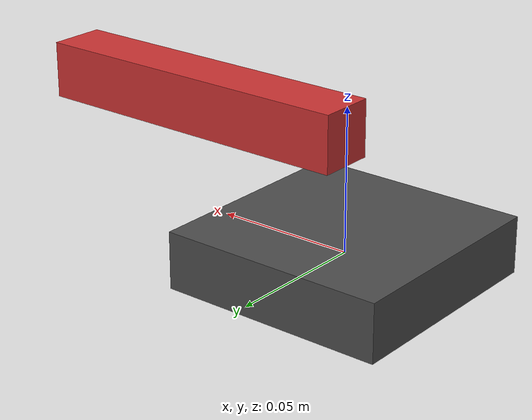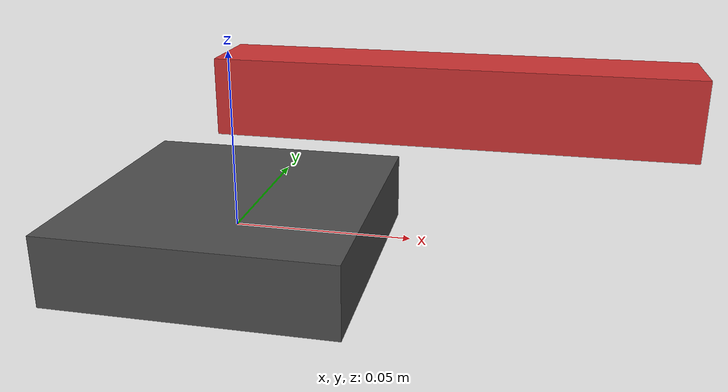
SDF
<?xml version="1.0"?>
<sdf version="1.6">
  <model name="diverter_arm">
    <static>false</static>

    <link name="base_link">
      <pose>0 0 0 0 0 0</pose>
      <inertial>
        <mass>1.0</mass>
        <inertia>
          <ixx>0.01</ixx>
          <ixy>0.0</ixy>
          <ixz>0.0</ixz>
          <iyy>0.01</iyy>
          <iyz>0.0</iyz>
          <izz>0.01</izz>
        </inertia>
      </inertial>
      <collision name="base_collision">
        <geometry>
          <box>
            <size>0.08 0.08 0.02</size>
          </box>
        </geometry>
      </collision>
      <visual name="base_visual">
        <geometry>
          <box>
            <size>0.08 0.08 0.02</size>
          </box>
        </geometry>
        <material>
          <ambient>0.3 0.3 0.3 1</ambient>
          <diffuse>0.3 0.3 0.3 1</diffuse>
          <specular>0.1 0.1 0.1 1</specular>
        </material>
      </visual>
    </link>

    <link name="arm_link">
      <pose>0.06 0 0.04 0 0 0</pose>
      <inertial>
        <mass>0.2</mass>
        <inertia>
          <ixx>0.002</ixx>
          <ixy>0.0</ixy>
          <ixz>0.0</ixz>
          <iyy>0.002</iyy>
          <iyz>0.0</iyz>
          <izz>0.001</izz>
        </inertia>
      </inertial>
      <collision name="arm_collision">
        <geometry>
          <box>
            <size>0.12 0.02 0.02</size>
          </box>
        </geometry>
      </collision>
      <visual name="arm_visual">
        <geometry>
          <box>
            <size>0.12 0.02 0.02</size>
          </box>
        </geometry>
        <material>
          <ambient>0.8 0.2 0.2 1</ambient>
          <diffuse>0.8 0.2 0.2 1</diffuse>
          <specular>0.2 0.2 0.2 1</specular>
        </material>
      </visual>
    </link>

    <joint name="diverter_joint" type="revolute">
      <parent>base_link</parent>
      <child>arm_link</child>
      <pose>0.04 0 0.04 0 0 0</pose>
      <axis>
        <xyz>0 0 1</xyz>
        <limit>
          <lower>-1.2</lower>
          <upper>1.2</upper>
          <effort>5.0</effort>
          <velocity>2.0</velocity>
        </limit>
      </axis>
    </joint>
  </model>
</sdf>
